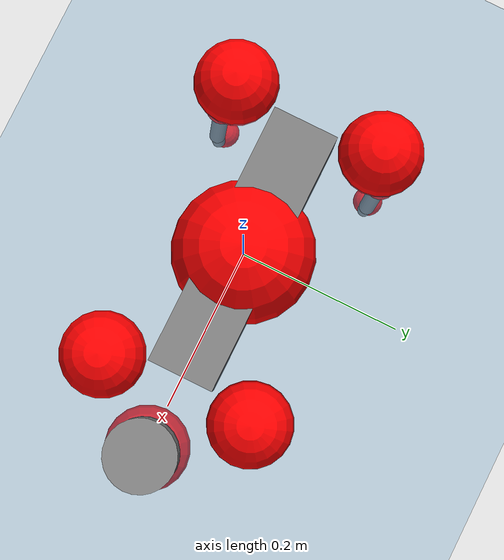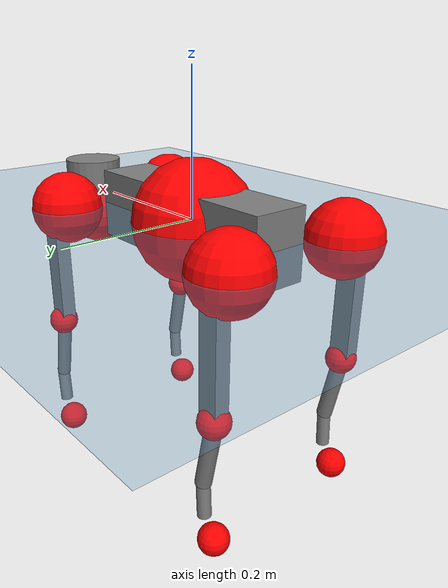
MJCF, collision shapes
<mujoco model="go2">
  <compiler angle="radian" assetdir="assets" balanceinertia="true" inertiafromgeom="false"/>

  <option timestep="0.005" density="1.2" viscosity="2e-05"/>

  <size nkey="1"/>

  <visual>
    <quality shadowsize="8192"/>
    <map shadowclip="0.5"/>
  </visual>

  <default>
    <default class="/">
      <geom contype="0" conaffinity="0" group="1" solref="-1000 -80"/>
      <site size="0.01 0.005 0.005" group="5"/>
      <general forcelimited="true" biastype="affine" gainprm="20" biasprm="0 -20 -0.5"/>
      <default class="go2">
        <joint armature="0.01" damping="0.01" frictionloss="0.2"/>
        <geom condim="1" margin="0.001"/>
        <default class="visual">
          <geom type="mesh" group="2"/>
        </default>
        <default class="collision">
          <geom group="3"/>
          <default class="foot">
            <geom size="0.022 0 0" condim="6" priority="1" friction="0.8 0.02 0.01" solimp="0.015 1 0.022"/>
          </default>
        </default>
        <default class="reward_collision_sphere">
          <geom group="5" rgba="1 0 0 1"/>
        </default>
      </default>
    </default>
  </default>

  <asset>
    <texture type="skybox" colorspace="auto" name="//unnamed_texture_0" builtin="gradient" rgb1="0.95 0.95 0.95" rgb2="0.95 0.95 0.95" width="100" height="600"/>
    <texture type="2d" colorspace="auto" name="texplane" builtin="checker" rgb1="0.345 0.575 0.748" rgb2="0.345 0.575 0.748" markrgb="1 1 1" width="512" height="512"/>
    <material name="MatPlane" class="/" texture="texplane" texuniform="true" texrepeat="2 2" specular="0.9"/>
    <material name="metal" class="/" rgba="0.9 0.95 0.95 1"/>
    <material name="black" class="/" rgba="0 0 0 1"/>
    <material name="white" class="/"/>
    <material name="gray" class="/" rgba="0.671705 0.692426 0.77427 1"/>
    <mesh name="base_0" class="/" file="base_0.obj"/>
    <mesh name="base_1" class="/" file="base_1.obj"/>
    <mesh name="base_2" class="/" file="base_2.obj"/>
    <mesh name="base_3" class="/" file="base_3.obj"/>
    <mesh name="base_4" class="/" file="base_4.obj"/>
    <mesh name="hip_0" class="/" file="hip_0.obj"/>
    <mesh name="hip_1" class="/" file="hip_1.obj"/>
    <mesh name="thigh_0" class="/" file="thigh_0.obj"/>
    <mesh name="thigh_1" class="/" file="thigh_1.obj"/>
    <mesh name="thigh_mirror_0" class="/" file="thigh_mirror_0.obj"/>
    <mesh name="thigh_mirror_1" class="/" file="thigh_mirror_1.obj"/>
    <mesh name="calf_0" class="/" file="calf_0.obj"/>
    <mesh name="calf_1" class="/" file="calf_1.obj"/>
    <mesh name="calf_mirror_0" class="/" file="calf_mirror_0.obj"/>
    <mesh name="calf_mirror_1" class="/" file="calf_mirror_1.obj"/>
    <mesh name="foot" class="/" file="foot.obj"/>
  </asset>

  <worldbody>
    <geom name="floor" class="/" size="100 100 0.125" type="plane" group="0" material="MatPlane"/>
    <light name="toplight_shadow" class="/" pos="0 0 5" dir="0.0990148 0.0990148 -0.990148" type="directional" ambient="0.04 0.04 0.04" diffuse="0.55 0.55 0.55" specular="0.12 0.12 0.12"/>
    <light name="toplight_fill" class="/" pos="0 0 5" dir="0.0990148 0.0990148 -0.990148" type="directional" castshadow="false" ambient="0.04 0.04 0.04" diffuse="0.3 0.3 0.3" specular="0.08 0.08 0.08"/>
    <body name="trunk" childclass="go2" pos="-0.0027709 -0.00105866 -0.00197592" quat="0.999999 -0.000926238 0.000644775 -0.000621776">
      <inertial pos="0.0173954 0.00173089 -0.00529551" quat="0.00837107 0.713767 -0.0125346 0.700221" mass="4.53862" diaginertia="0.0754316 0.039659 0.0105419"/>
      <joint name="//unnamed_joint_0" type="free" armature="0" damping="0" frictionloss="0"/>
      <geom name="//unnamed_geom_1" class="visual" material="black" mesh="base_0"/>
      <geom name="//unnamed_geom_2" class="visual" material="black" mesh="base_1"/>
      <geom name="//unnamed_geom_3" class="visual" material="black" mesh="base_2"/>
      <geom name="//unnamed_geom_4" class="visual" material="white" mesh="base_3"/>
      <geom name="//unnamed_geom_5" class="visual" material="gray" mesh="base_4"/>
      <geom name="trunk_1" class="collision" size="0.163426 0.0406176 0.049523" type="box"/>
      <geom name="trunk_2" class="collision" size="0.0434413 0.0390971" pos="0.264767 0 0.00842745" type="cylinder"/>
      <geom name="trunk_3" class="collision" size="0.0408348" pos="0.272199 0 -0.0505647"/>
      <geom name="//unnamed_geom_9" class="reward_collision_sphere" size="0.0868825"/>
      <geom name="//unnamed_geom_10" class="reward_collision_sphere" size="0.0521295" pos="0.260122 0 -0.0379235"/>
      <site name="imu" pos="-0.0124996 -0.00865369 0.0315224" size="0.00868825"/>
      <camera name="track" pos="0 -1.66944 0" quat="0.707107 0.707107 0 0" mode="trackcom"/>
      <camera name="ego_camera" pos="0.28985 0 0.0379235" quat="-0.5 -0.5 0.5 0.5"/>
      <body name="FL_hip" pos="0.179087 0.0391407 -0.00123387" quat="0.999999 -0.000751307 0.000262492 0.000860596">
        <inertial pos="-0.00703285 0.00105119 5.97499e-05" quat="0.494162 0.51115 0.501987 0.492483" mass="0.458802" diaginertia="0.000629969 0.000249084 0.000215499"/>
        <joint name="FL_hip_joint" pos="0 0 0" axis="0.999937 0.00437194 -0.0103008" stiffness="0.00465086" range="-0.998347 1.05014" armature="0.00998503" damping="0.000879954" frictionloss="0.182817"/>
        <geom name="//unnamed_geom_11" class="visual" material="metal" mesh="hip_0"/>
        <geom name="//unnamed_geom_12" class="visual" material="gray" mesh="hip_1"/>
        <geom name="//unnamed_geom_13" class="collision" size="0.039966 0.0173765" pos="0 0.0667778 0" quat="0.707107 0.707107 0 0" type="cylinder"/>
        <geom name="//unnamed_geom_14" class="reward_collision_sphere" size="0.0521295" pos="0 0.0584306 0"/>
        <body name="FL_thigh" pos="-0.00143923 0.0797362 -0.0005099" quat="1 0.000136512 0.000185321 0.00014314">
          <inertial pos="-0.00421836 -0.0208556 -0.0292646" quat="0.82932 0.0845333 -0.0197734 0.551989" mass="0.761204" diaginertia="0.00405248 0.00229285 0.000368316"/>
          <joint name="FL_thigh_joint" pos="0 0 0" axis="0.00118195 0.999969 -0.00784515" stiffness="0.0101789" range="-1.5742 3.52654" armature="0.00784543" damping="0.00161831" frictionloss="0.174602"/>
          <geom name="//unnamed_geom_15" class="visual" material="metal" mesh="thigh_0"/>
          <geom name="//unnamed_geom_16" class="visual" material="gray" mesh="thigh_1"/>
          <geom name="//unnamed_geom_17" class="collision" size="0.0925299 0.0106431 0.01477" pos="0 0 -0.0897524" quat="0.707107 0 0.707107 0" type="box"/>
          <body name="FL_calf" pos="0.00180025 0.00196191 -0.177009" quat="1 -0.000110251 0.000139687 -3.74723e-05">
            <inertial pos="0.0056165 -0.00255423 -0.116299" quat="0.711341 0.00167164 -0.00348126 0.702836" mass="0.164111" diaginertia="0.00107228 0.000600099 2.2629e-05"/>
            <joint name="FL_calf_joint" pos="0 0 0" axis="-0.0146846 0.999861 0.00786973" range="-2.67194 -0.890138" armature="0.00862604" damping="0.00252724" frictionloss="0.183124"/>
            <geom name="//unnamed_geom_18" class="visual" material="gray" mesh="calf_0"/>
            <geom name="//unnamed_geom_19" class="visual" material="black" mesh="calf_1"/>
            <geom name="FL_calf0" class="collision" size="0.0104259 0.0521295" pos="0.00743206 0 -0.0505647" quat="0.994493 0 -0.104807 0" type="cylinder"/>
            <geom name="//unnamed_geom_21" class="collision" size="0.00955708 0.0282368" pos="0.0185801 0 -0.124726" quat="0.999688 0 0.0249974 0" type="cylinder"/>
            <geom name="//unnamed_geom_22" class="visual" pos="0 0 -0.179505" quat="1 0 0 0" material="black" mesh="foot"/>
            <geom name="FL_foot" class="foot" size="0.0179106" pos="-0.00185801 0 -0.179505"/>
            <geom name="//unnamed_geom_24" class="reward_collision_sphere" size="0.0217206"/>
            <geom name="//unnamed_geom_25" class="reward_collision_sphere" size="0.0217206" pos="-0.00185801 0 -0.179505"/>
            <site name="FL_foot" class="foot" pos="-0.00185801 0 -0.179505" size="0.00868825"/>
          </body>
        </body>
      </body>
      <body name="FR_hip" pos="0.182228 -0.0363176 0.00247391" quat="1 -5.10658e-06 -0.000105324 -7.02905e-05">
        <inertial pos="-0.00468264 -0.00418743 -0.00046527" quat="0.489858 0.507441 0.507607 0.494851" mass="0.458495" diaginertia="0.000612923 0.000252516 0.000207592"/>
        <joint name="FR_hip_joint" pos="0 0 0" axis="1 -1.34686e-05 -2.4184e-05" range="-0.991895 1.03662" armature="0.00876364" damping="0.0177594" frictionloss="0.179033"/>
        <geom name="//unnamed_geom_26" class="visual" pos="0 -6.98913e-11 -2.99778e-09" quat="4.63268e-05 1 0 0" material="metal" mesh="hip_0"/>
        <geom name="//unnamed_geom_27" class="visual" pos="0 -1.13302e-10 7.41466e-09" quat="4.63268e-05 1 0 0" material="gray" mesh="hip_1"/>
        <geom name="//unnamed_geom_28" class="collision" size="0.039966 0.0173765" pos="0 -0.0667778 0" quat="0.707107 0.707107 0 0" type="cylinder"/>
        <geom name="//unnamed_geom_29" class="reward_collision_sphere" size="0.0521295" pos="0 -0.0584306 0"/>
        <body name="FR_thigh" pos="0.00228619 -0.0791901 -0.00208262" quat="1 -0.000163007 7.56269e-05 5.1199e-05">
          <inertial pos="-0.00387298 0.0189509 -0.0297546" quat="0.548541 -0.0161544 0.0908725 0.831014" mass="0.780734" diaginertia="0.00412627 0.00243204 0.000383795"/>
          <joint name="FR_thigh_joint" pos="0 0 0" axis="-0.000931164 -0.999999 0.00142255" stiffness="0.0027884" range="-3.5369 1.62644" armature="0.00757386" damping="0.0101096" frictionloss="0.169415"/>
          <geom name="//unnamed_geom_30" class="visual" material="metal" mesh="thigh_mirror_0"/>
          <geom name="//unnamed_geom_31" class="visual" material="gray" mesh="thigh_mirror_1"/>
          <geom name="//unnamed_geom_32" class="collision" size="0.0925299 0.0106431 0.01477" pos="0 0 -0.0897524" quat="0.707107 0 0.707107 0" type="box"/>
          <body name="FR_calf" pos="-0.00114656 -0.00127981 -0.179003" quat="1 4.84911e-05 6.05872e-05 -5.14728e-05">
            <inertial pos="0.00512918 0.00123412 -0.117671" quat="0.700897 0.00245995 0.00912329 0.7132" mass="0.149719" diaginertia="0.00102727 0.000594676 2.1443e-05"/>
            <joint name="FR_calf_joint" pos="0 0 0" axis="-0.00354106 -0.999992 -0.00190146" range="0.847262 2.68004" armature="0.00996946" damping="0.016342" frictionloss="0.175168"/>
            <geom name="//unnamed_geom_33" class="visual" material="gray" mesh="calf_mirror_0"/>
            <geom name="//unnamed_geom_34" class="visual" material="black" mesh="calf_mirror_1"/>
            <geom name="FR_calf0" class="collision" size="0.0112947 0.0521295" pos="0.00929007 0 -0.0505647" quat="0.995004 0 -0.0998334 0" type="cylinder"/>
            <geom name="//unnamed_geom_36" class="collision" size="0.00955708 0.0282368" pos="0.0185801 0 -0.124726" quat="0.999688 0 0.0249974 0" type="cylinder"/>
            <geom name="//unnamed_geom_37" class="visual" pos="0 0 -0.179505" quat="1 0 0 0" material="black" mesh="foot"/>
            <geom name="FR_foot" class="foot" size="0.019706" pos="-0.00185801 0 -0.179505"/>
            <geom name="//unnamed_geom_39" class="reward_collision_sphere" size="0.0217206"/>
            <geom name="//unnamed_geom_40" class="reward_collision_sphere" size="0.0217206" pos="-0.00185801 0 -0.179505"/>
            <site name="FR_foot" class="foot" pos="-0.00185801 0 -0.179505" size="0.00868825"/>
          </body>
        </body>
      </body>
      <body name="RL_hip" pos="-0.178897 0.0365978 -0.00112242" quat="1 -1.60719e-05 4.18806e-05 -0.0001214">
        <inertial pos="0.00540814 0.00297043 -0.00173006" quat="0.505458 0.49471 0.50101 0.498761" mass="0.464725" diaginertia="0.000640772 0.000236511 0.00020471"/>
        <joint name="RL_hip_joint" pos="0 0 0" axis="-0.999904 -0.00403422 -0.0132548" range="-1.00831 1.09816" armature="0.00884291" damping="0" frictionloss="0.195973"/>
        <geom name="//unnamed_geom_41" class="visual" pos="-7.5148e-10 0 -1.47307e-07" quat="4.63268e-05 0 1 0" material="metal" mesh="hip_0"/>
        <geom name="//unnamed_geom_42" class="visual" pos="-1.21824e-09 0 -1.30641e-07" quat="4.63268e-05 0 1 0" material="gray" mesh="hip_1"/>
        <geom name="//unnamed_geom_43" class="collision" size="0.039966 0.0173765" pos="0 0.0667778 0" quat="0.707107 0.707107 0 0" type="cylinder"/>
        <geom name="//unnamed_geom_44" class="reward_collision_sphere" size="0.0521295" pos="0 0.0584306 0"/>
        <body name="RL_thigh" pos="-0.000267448 0.0793597 0.00115863" quat="1 6.36233e-06 -1.14525e-05 -7.83994e-06">
          <inertial pos="-0.00612164 -0.0194218 -0.0293856" quat="0.825939 0.0892071 -0.0309138 0.555798" mass="0.776494" diaginertia="0.00406305 0.00241257 0.000367849"/>
          <joint name="RL_thigh_joint" pos="0 0 0" axis="0.00732404 0.999837 -0.0165065" range="-0.573692 4.55023" armature="0.00905521" damping="0" frictionloss="0.169285"/>
          <geom name="//unnamed_geom_45" class="visual" material="metal" mesh="thigh_0"/>
          <geom name="//unnamed_geom_46" class="visual" material="gray" mesh="thigh_1"/>
          <geom name="//unnamed_geom_47" class="collision" size="0.0925299 0.0106431 0.01477" pos="0 0 -0.0897524" quat="0.707107 0 0.707107 0" type="box"/>
          <body name="RL_calf" pos="-0.00203529 0.0005801 -0.182859" quat="1 5.5342e-05 0.000101815 0.00015636">
            <inertial pos="0.00799624 -0.00299105 -0.116542" quat="0.713645 0.00908419 0.00654268 0.700418" mass="0.153041" diaginertia="0.00103558 0.000603146 2.24407e-05"/>
            <joint name="RL_calf_joint" pos="0 0 0" axis="-0.0015428 0.999998 -0.00147994" range="-2.7157 -0.83525" armature="0.00833254" damping="0.00280586" frictionloss="0.194591"/>
            <geom name="//unnamed_geom_48" class="visual" material="gray" mesh="calf_0"/>
            <geom name="//unnamed_geom_49" class="visual" material="black" mesh="calf_1"/>
            <geom name="RL_calf0" class="collision" size="0.0112947 0.0521295" pos="0.00929007 0 -0.0505647" quat="0.995004 0 -0.0998334 0" type="cylinder"/>
            <geom name="//unnamed_geom_51" class="collision" size="0.00955708 0.0282368" pos="0.0185801 0 -0.124726" quat="0.999688 0 0.0249974 0" type="cylinder"/>
            <geom name="//unnamed_geom_52" class="visual" pos="0 0 -0.179505" quat="1 0 0 0" material="black" mesh="foot"/>
            <geom name="RL_foot" class="foot" size="0.0187226" pos="-0.00185801 0 -0.179505"/>
            <geom name="//unnamed_geom_54" class="reward_collision_sphere" size="0.0217206"/>
            <geom name="//unnamed_geom_55" class="reward_collision_sphere" size="0.0217206" pos="-0.00185801 0 -0.179505"/>
            <site name="RL_foot" class="foot" pos="-0.00185801 0 -0.179505" size="0.00868825"/>
          </body>
        </body>
      </body>
      <body name="RR_hip" pos="-0.1798 -0.0401518 -0.000811945" quat="1 0.000742825 1.66693e-05 0.000201862">
        <inertial pos="0.00515877 0.0012011 -0.00304063" quat="0.498995 0.497648 0.497951 0.505367" mass="0.44169" diaginertia="0.000603546 0.000237834 0.000199119"/>
        <joint name="RR_hip_joint" pos="0 0 0" axis="-0.999964 0.00571762 0.00627302" stiffness="0.00316604" range="-1.02402 0.991486" armature="0.00778582" damping="0" frictionloss="0.180596"/>
        <geom name="//unnamed_geom_56" class="visual" pos="7.48216e-10 -6.98913e-11 -1.4431e-07" quat="2.14617e-09 4.63268e-05 4.63268e-05 -1" material="metal" mesh="hip_0"/>
        <geom name="//unnamed_geom_57" class="visual" pos="1.22631e-09 -1.13302e-10 -1.38055e-07" quat="2.14617e-09 4.63268e-05 4.63268e-05 -1" material="gray" mesh="hip_1"/>
        <geom name="//unnamed_geom_58" class="collision" size="0.039966 0.0173765" pos="0 -0.0667778 0" quat="0.707107 0.707107 0 0" type="cylinder"/>
        <geom name="//unnamed_geom_59" class="reward_collision_sphere" size="0.0521295" pos="0 -0.0584306 0"/>
        <body name="RR_thigh" pos="-0.000885523 -0.0798177 0.0016844" quat="1 1.86219e-05 1.82317e-05 9.3182e-05">
          <inertial pos="-0.00583218 0.0215703 -0.0276097" quat="0.551613 -0.0186588 0.0851366 0.829534" mass="0.703723" diaginertia="0.00405525 0.00231189 0.000373174"/>
          <joint name="RR_thigh_joint" pos="0 0 0" axis="-0.000269945 -1 0.000740992" stiffness="0.0105852" range="-4.58372 0.57507" armature="0.0088878" damping="0.0148577" frictionloss="0.149612"/>
          <geom name="//unnamed_geom_60" class="visual" material="metal" mesh="thigh_mirror_0"/>
          <geom name="//unnamed_geom_61" class="visual" material="gray" mesh="thigh_mirror_1"/>
          <geom name="//unnamed_geom_62" class="collision" size="0.0925299 0.0106431 0.01477" pos="0 0 -0.0897524" quat="0.707107 0 0.707107 0" type="box"/>
          <body name="RR_calf" pos="0.00242989 -0.000421841 -0.180731" quat="1 -0.000213959 -0.000271237 0.000422201">
            <inertial pos="0.00637771 0.000451162 -0.119054" quat="0.704192 -0.00890308 -0.000964305 0.709953" mass="0.147607" diaginertia="0.00100454 0.000579338 2.1681e-05"/>
            <joint name="RR_calf_joint" pos="0 0 0" axis="-0.00271839 -0.999996 0.000598057" range="0.836283 2.77144" armature="0.00803797" damping="0.00840823" frictionloss="0.169681"/>
            <geom name="//unnamed_geom_63" class="visual" material="gray" mesh="calf_mirror_0"/>
            <geom name="//unnamed_geom_64" class="visual" material="black" mesh="calf_mirror_1"/>
            <geom name="RR_calf0" class="collision" size="0.0112947 0.0521295" pos="0.00929007 0 -0.0505647" quat="0.995004 0 -0.0998334 0" type="cylinder"/>
            <geom name="//unnamed_geom_66" class="collision" size="0.00955708 0.0282368" pos="0.0185801 0 -0.124726" quat="0.999688 0 0.0249974 0" type="cylinder"/>
            <geom name="//unnamed_geom_67" class="visual" pos="0 0 -0.179505" quat="1 0 0 0" material="black" mesh="foot"/>
            <geom name="RR_foot" class="foot" size="0.0194709" pos="-0.00185801 0 -0.179505"/>
            <geom name="//unnamed_geom_69" class="reward_collision_sphere" size="0.0217206"/>
            <geom name="//unnamed_geom_70" class="reward_collision_sphere" size="0.0217206" pos="-0.00185801 0 -0.179505"/>
            <site name="RR_foot" class="foot" pos="-0.00185801 0 -0.179505" size="0.00868825"/>
          </body>
        </body>
      </body>
    </body>
  </worldbody>

  <contact>
    <pair class="/" geom1="floor" geom2="FL_foot" name="//unnamed_contact_0"/>
    <pair class="/" geom1="floor" geom2="FR_foot" name="//unnamed_contact_1"/>
    <pair class="/" geom1="floor" geom2="RL_foot" name="//unnamed_contact_2"/>
    <pair class="/" geom1="floor" geom2="RR_foot" name="//unnamed_contact_3"/>
  </contact>

  <actuator>
    <general name="FL_hip" class="/" joint="FL_hip_joint" forcerange="-19.7705 19.7705" gainprm="17.3145" biasprm="0 -17.3145 -0.466093"/>
    <general name="FL_thigh" class="/" joint="FL_thigh_joint" forcerange="-22.6952 22.6952" gainprm="17.3145" biasprm="0 -17.3145 -0.466093"/>
    <general name="FL_calf" class="/" joint="FL_calf_joint" forcerange="-35.745 35.745" gainprm="17.3145" biasprm="0 -17.3145 -0.466093"/>
    <general name="FR_hip" class="/" joint="FR_hip_joint" forcerange="-19.8394 19.8394" gainprm="17.3145" biasprm="0 -17.3145 -0.466093"/>
    <general name="FR_thigh" class="/" joint="FR_thigh_joint" forcerange="-22.3885 22.3885" gainprm="17.3145" biasprm="0 -17.3145 -0.466093"/>
    <general name="FR_calf" class="/" joint="FR_calf_joint" forcerange="-40.8206 40.8206" gainprm="17.3145" biasprm="0 -17.3145 -0.466093"/>
    <general name="RL_hip" class="/" joint="RL_hip_joint" forcerange="-22.3467 22.3467" gainprm="17.3145" biasprm="0 -17.3145 -0.466093"/>
    <general name="RL_thigh" class="/" joint="RL_thigh_joint" forcerange="-22.0955 22.0955" gainprm="17.3145" biasprm="0 -17.3145 -0.466093"/>
    <general name="RL_calf" class="/" joint="RL_calf_joint" forcerange="-38.9896 38.9896" gainprm="17.3145" biasprm="0 -17.3145 -0.466093"/>
    <general name="RR_hip" class="/" joint="RR_hip_joint" forcerange="-20.7085 20.7085" gainprm="17.3145" biasprm="0 -17.3145 -0.466093"/>
    <general name="RR_thigh" class="/" joint="RR_thigh_joint" forcerange="-19.184 19.184" gainprm="17.3145" biasprm="0 -17.3145 -0.466093"/>
    <general name="RR_calf" class="/" joint="RR_calf_joint" forcerange="-35.2533 35.2533" gainprm="17.3145" biasprm="0 -17.3145 -0.466093"/>
  </actuator>

  <sensor>
    <gyro site="imu" name="imu_angular_velocity"/>
    <velocimeter site="imu" name="imu_linear_velocity"/>
    <framelinvel objtype="site" objname="FL_foot" name="FL_foot_global_linear_velocity"/>
    <framelinvel objtype="site" objname="FR_foot" name="FR_foot_global_linear_velocity"/>
    <framelinvel objtype="site" objname="RL_foot" name="RL_foot_global_linear_velocity"/>
    <framelinvel objtype="site" objname="RR_foot" name="RR_foot_global_linear_velocity"/>
  </sensor>

  <keyframe>
    <key name="home" qpos="0 0 0.325 1 0 0 0 0.1 0.8 -1.5 -0.1 -0.8 1.5 -0.1 0.8 -1.5 0.1 -0.8 1.5"/>
  </keyframe>
</mujoco>
